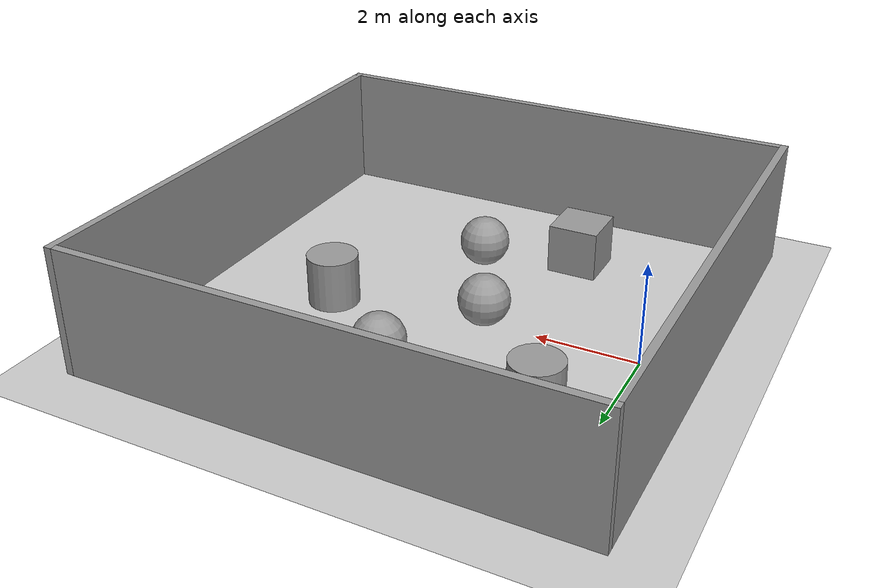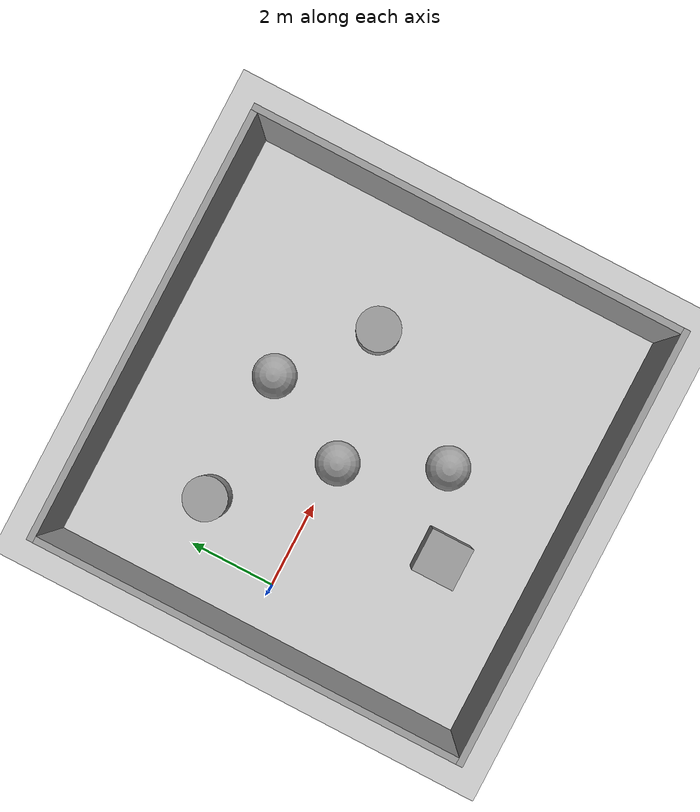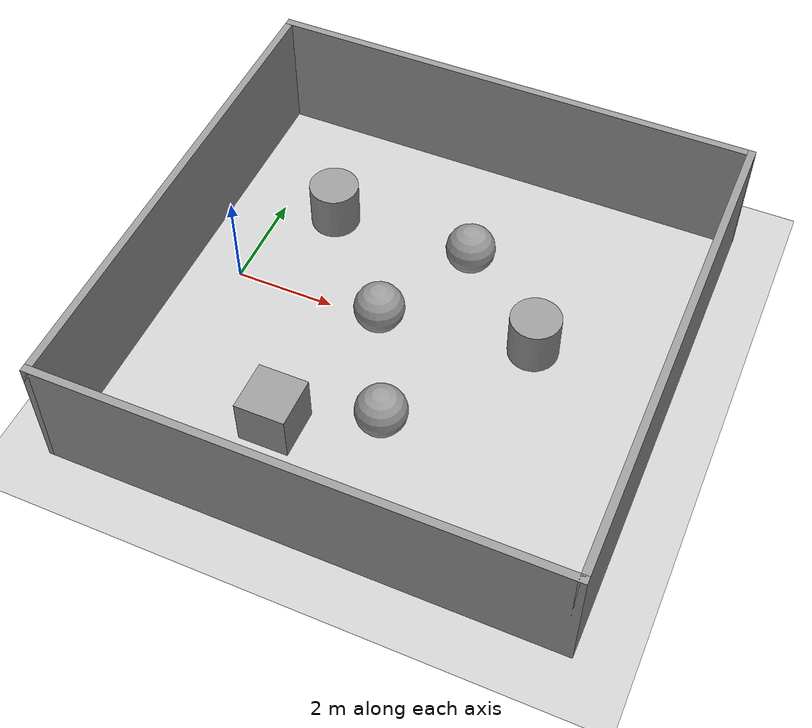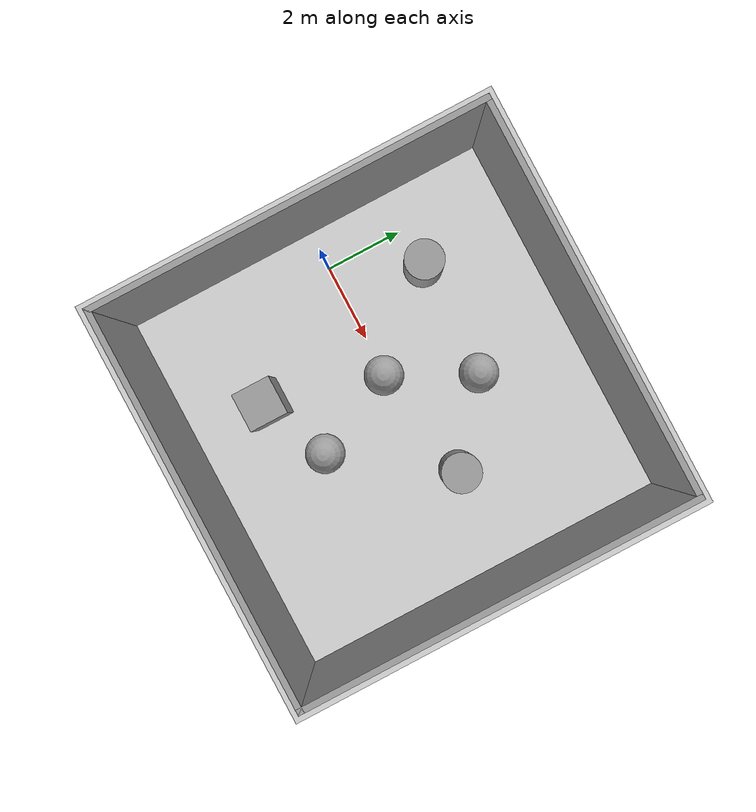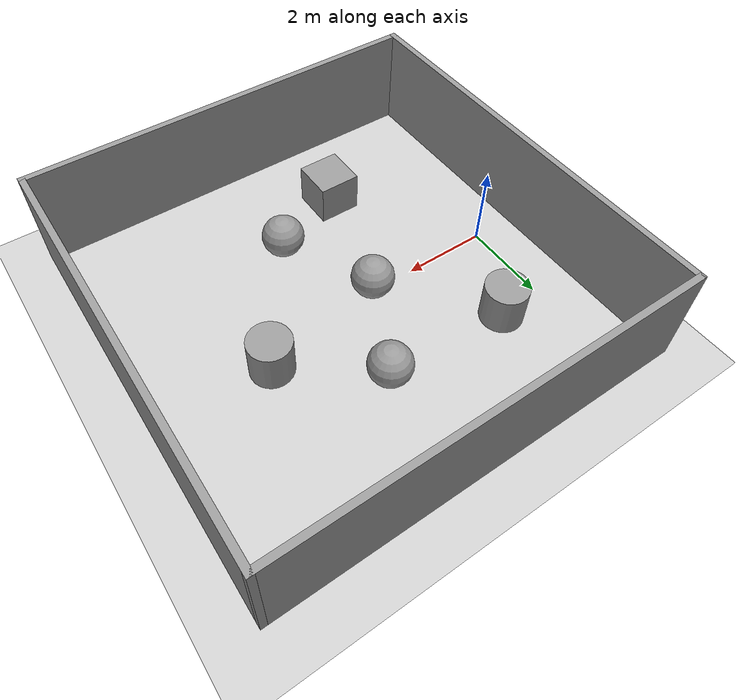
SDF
<sdf version="1.6">
 <world name="default">
  <light name="sun" type="directional">
   <pose>0 0 10 0 -0 0</pose>
   <diffuse>0.8 0.8 0.8 1</diffuse>
   <specular>0.2 0.2 0.2 1</specular>
   <attenuation>
    <range>1000</range>
    <constant>0.9</constant>
    <linear>0.01</linear>
    <quadratic>0.001</quadratic>
   </attenuation>
   <direction>-0.5 0.1 -0.9</direction>
  </light>
  <model name="ground_plane">
   <static>1</static>
   <link name="link">
    <collision name="collision">
     <geometry><plane><normal>0 0 1</normal><size>100 100</size></plane></geometry>
     <surface><friction><ode><mu>100</mu><mu2>50</mu2></ode></friction></surface>
    </collision>
    <visual name="visual">
     <cast_shadows>0</cast_shadows>
     <geometry><plane><normal>0 0 1</normal><size>100 100</size></plane></geometry>
     <material>
      <script><uri>file://media/materials/scripts/gazebo.material</uri><name>Gazebo/Grey</name></script>
     </material>
    </visual>
   </link>
  </model>
  <gravity>0 0 -9.8</gravity>
  <magnetic_field>6e-06 2.3e-05 -4.2e-05</magnetic_field>
  <atmosphere type="adiabatic"/>
  <physics name="default_physics" default="0" type="ode">
   <max_step_size>0.001</max_step_size>
   <real_time_factor>1</real_time_factor>
   <real_time_update_rate>1000</real_time_update_rate>
  </physics>
  <scene><ambient>0.4 0.4 0.4 1</ambient><background>0.7 0.7 0.7 1</background><shadows>1</shadows></scene>
  <spherical_coordinates>
   <surface_model>EARTH_WGS84</surface_model>
   <latitude_deg>0</latitude_deg>
   <longitude_deg>0</longitude_deg>
   <elevation>0</elevation>
   <heading_deg>0</heading_deg>
  </spherical_coordinates>
  <model name="irl_test1">
   <pose>3.83245 -0.161599 0 0 -0 0</pose>
   <link name="Wall_5">
    <collision name="Wall_5_Collision">
     <geometry><box><size>10 0.15 2.5</size></box></geometry>
     <pose>0 0 1.25 0 -0 0</pose>
    </collision>
    <visual name="Wall_5_Visual">
     <pose>0 0 1.25 0 -0 0</pose>
     <geometry><box><size>10 0.15 2.5</size></box></geometry>
     <material>
      <script><uri>file://media/materials/scripts/gazebo.material</uri><name>Gazebo/Grey</name></script>
      <ambient>1 1 1 1</ambient>
     </material>
     <meta><layer>0</layer></meta>
    </visual>
    <pose>0 -4.925 0 0 -0 0</pose>
   </link>
   <link name="Wall_6">
    <collision name="Wall_6_Collision">
     <geometry><box><size>10 0.15 2.5</size></box></geometry>
     <pose>0 0 1.25 0 -0 0</pose>
    </collision>
    <visual name="Wall_6_Visual">
     <pose>0 0 1.25 0 -0 0</pose>
     <geometry><box><size>10 0.15 2.5</size></box></geometry>
     <material>
      <script><uri>file://media/materials/scripts/gazebo.material</uri><name>Gazebo/Grey</name></script>
      <ambient>1 1 1 1</ambient>
     </material>
     <meta><layer>0</layer></meta>
    </visual>
    <pose>4.925 0 0 0 -0 1.5708</pose>
   </link>
   <link name="Wall_7">
    <collision name="Wall_7_Collision">
     <geometry><box><size>10 0.15 2.5</size></box></geometry>
     <pose>0 0 1.25 0 -0 0</pose>
    </collision>
    <visual name="Wall_7_Visual">
     <pose>0 0 1.25 0 -0 0</pose>
     <geometry><box><size>10 0.15 2.5</size></box></geometry>
     <material>
      <script><uri>file://media/materials/scripts/gazebo.material</uri><name>Gazebo/Grey</name></script>
      <ambient>1 1 1 1</ambient>
     </material>
     <meta><layer>0</layer></meta>
    </visual>
    <pose>0 4.925 0 0 -0 3.14159</pose>
   </link>
   <link name="Wall_8">
    <collision name="Wall_8_Collision">
     <geometry><box><size>10 0.15 2.5</size></box></geometry>
     <pose>0 0 1.25 0 -0 0</pose>
    </collision>
    <visual name="Wall_8_Visual">
     <pose>0 0 1.25 0 -0 0</pose>
     <geometry><box><size>10 0.15 2.5</size></box></geometry>
     <material>
      <script><uri>file://media/materials/scripts/gazebo.material</uri><name>Gazebo/Grey</name></script>
      <ambient>1 1 1 1</ambient>
     </material>
     <meta><layer>0</layer></meta>
    </visual>
    <pose>-4.925 0 0 0 -0 -1.5708</pose>
   </link>
   <static>1</static>
  </model>
  <model name="unit_sphere">
   <pose>3.08016 -0.043646 0.5 0 -0 0</pose>
   <link name="link">
    <inertial>
     <mass>1</mass>
     <inertia><ixx>0.1</ixx><ixy>0</ixy><ixz>0</ixz><iyy>0.1</iyy><iyz>0</iyz><izz>0.1</izz></inertia>
    </inertial>
    <collision name="collision"><geometry><sphere><radius>0.5</radius></sphere></geometry></collision>
    <visual name="visual">
     <geometry><sphere><radius>0.5</radius></sphere></geometry>
     <material>
      <script><name>Gazebo/Grey</name><uri>file://media/materials/scripts/gazebo.material</uri></script>
     </material>
    </visual>
   </link>
  </model>
  <model name="unit_cylinder">
   <pose>1.1024 2.12307 0.5 0 -0 0</pose>
   <link name="link">
    <inertial>
     <mass>1</mass>
     <inertia><ixx>0.145833</ixx><ixy>0</ixy><ixz>0</ixz><iyy>0.145833</iyy><iyz>0</iyz><izz>0.125</izz></inertia>
    </inertial>
    <collision name="collision">
     <geometry><cylinder><radius>0.5</radius><length>1</length></cylinder></geometry>
    </collision>
    <visual name="visual">
     <geometry><cylinder><radius>0.5</radius><length>1</length></cylinder></geometry>
     <material>
      <script><name>Gazebo/Grey</name><uri>file://media/materials/scripts/gazebo.material</uri></script>
     </material>
    </visual>
   </link>
  </model>
  <model name="unit_box">
   <pose>2.30985 -3.0049 0.5 0 -0 0</pose>
   <link name="link">
    <inertial>
     <mass>1</mass>
     <inertia>
      <ixx>0.166667</ixx>
      <ixy>0</ixy>
      <ixz>0</ixz>
      <iyy>0.166667</iyy>
      <iyz>0</iyz>
      <izz>0.166667</izz>
     </inertia>
    </inertial>
    <collision name="collision"><geometry><box><size>1 1 1</size></box></geometry></collision>
    <visual name="visual">
     <geometry><box><size>1 1 1</size></box></geometry>
     <material>
      <script><name>Gazebo/Grey</name><uri>file://media/materials/scripts/gazebo.material</uri></script>
     </material>
    </visual>
   </link>
  </model>
  <model name="unit_sphere_0">
   <pose>4.13013 2.05771 0.5 0 -0 0</pose>
   <link name="link">
    <inertial>
     <mass>1</mass>
     <inertia><ixx>0.1</ixx><ixy>0</ixy><ixz>0</ixz><iyy>0.1</iyy><iyz>0</iyz><izz>0.1</izz></inertia>
    </inertial>
    <collision name="collision"><geometry><sphere><radius>0.5</radius></sphere></geometry></collision>
    <visual name="visual">
     <geometry><sphere><radius>0.5</radius></sphere></geometry>
     <material>
      <script><name>Gazebo/Grey</name><uri>file://media/materials/scripts/gazebo.material</uri></script>
     </material>
    </visual>
   </link>
  </model>
  <model name="unit_sphere_1">
   <pose>4.10861 -2.23341 0.5 0 -0 0</pose>
   <link name="link">
    <inertial>
     <mass>1</mass>
     <inertia><ixx>0.1</ixx><ixy>0</ixy><ixz>0</ixz><iyy>0.1</iyy><iyz>0</iyz><izz>0.1</izz></inertia>
    </inertial>
    <collision name="collision"><geometry><sphere><radius>0.5</radius></sphere></geometry></collision>
    <visual name="visual">
     <geometry><sphere><radius>0.5</radius></sphere></geometry>
     <material>
      <script><name>Gazebo/Grey</name><uri>file://media/materials/scripts/gazebo.material</uri></script>
     </material>
    </visual>
   </link>
  </model>
  <model name="unit_cylinder_0">
   <pose>6.0528 0.505424 0.5 0 -0 0</pose>
   <link name="link">
    <inertial>
     <mass>1</mass>
     <inertia><ixx>0.145833</ixx><ixy>0</ixy><ixz>0</ixz><iyy>0.145833</iyy><iyz>0</iyz><izz>0.125</izz></inertia>
    </inertial>
    <collision name="collision">
     <geometry><cylinder><radius>0.5</radius><length>1</length></cylinder></geometry>
    </collision>
    <visual name="visual">
     <geometry><cylinder><radius>0.5</radius><length>1</length></cylinder></geometry>
     <material>
      <script><name>Gazebo/Grey</name><uri>file://media/materials/scripts/gazebo.material</uri></script>
     </material>
    </visual>
   </link>
  </model>
 </world>
</sdf>
